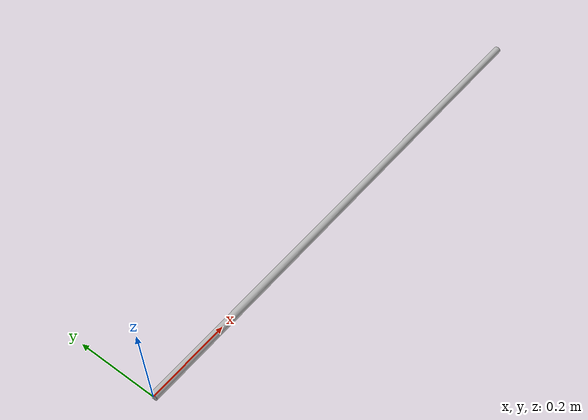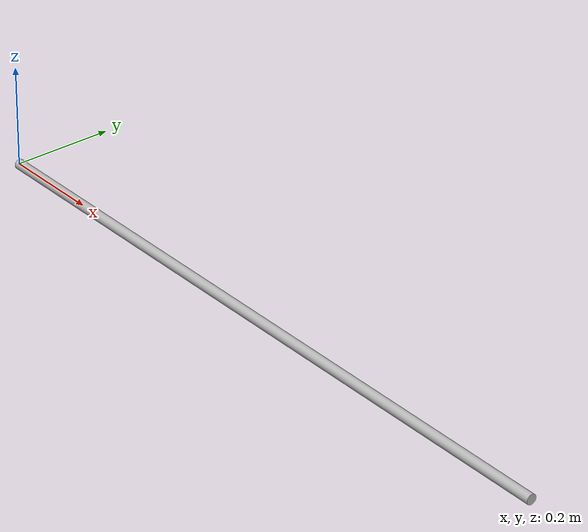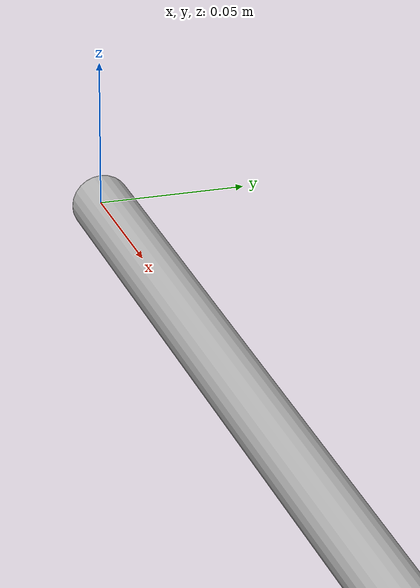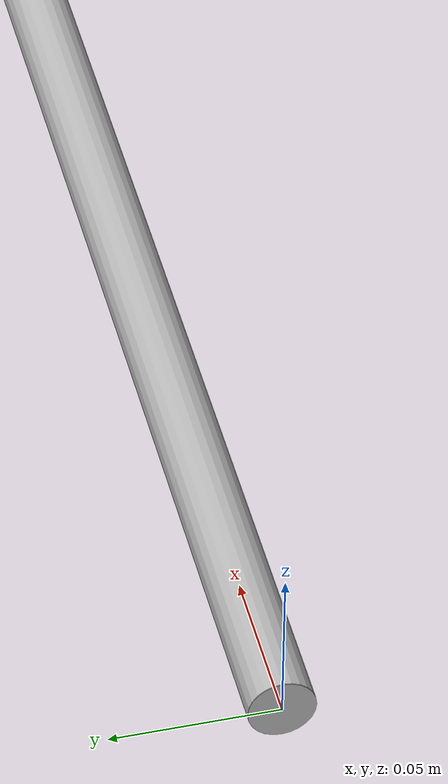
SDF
<sdf version='1.10'>
  <model name='tether'>
    <link name='element_first'>
      <inertial>
        <pose>5.0000000000000002e-05 0 0 0 1.5707963267948966 0</pose>
        <mass>0.0001</mass>
        <inertia>
          <ixx>2.500083333333334e-09</ixx>
          <ixy>0</ixy>
          <ixz>0</ixz>
          <iyy>2.500083333333334e-09</iyy>
          <iyz>0</iyz>
          <izz>5.0000000000000001e-09</izz>
        </inertia>
      </inertial>
      <visual name='element_first_visual'>
        <pose>5.0000000000000002e-05 0 0 0 1.5707963267948966 0</pose>
        <geometry>
          <cylinder>
            <length>0.0001</length>
            <radius>0.01</radius>
          </cylinder>
        </geometry>
      </visual>
    </link>
    <joint name='joint_0_to_p1' type='universal'>
      <pose relative_to='element_first'>0.0001 0 0 0 0 0</pose>
      <parent>element_first</parent>
      <child>element_p1</child>
      <axis>
        <xyz>0 1 0</xyz>
        <limit>
          <lower>-inf</lower>
          <upper>inf</upper>
        </limit>
        <dynamics>
          <damping>0.01</damping>
          <friction>0</friction>
          <spring_reference>0</spring_reference>
          <spring_stiffness>0</spring_stiffness>
        </dynamics>
      </axis>
      <axis2>
        <xyz>0 0 1</xyz>
        <limit>
          <lower>-inf</lower>
          <upper>inf</upper>
        </limit>
        <dynamics>
          <damping>0.01</damping>
          <friction>0</friction>
          <spring_reference>0</spring_reference>
          <spring_stiffness>0</spring_stiffness>
        </dynamics>
      </axis2>
    </joint>
    <link name='element_p1'>
      <pose relative_to='joint_0_to_p1'>0 0 0 0 0 0</pose>
      <inertial>
        <pose>5.0000000000000002e-05 0 0 0 1.5707963267948966 0</pose>
        <mass>0.0001</mass>
        <inertia>
          <ixx>2.500083333333334e-09</ixx>
          <ixy>0</ixy>
          <ixz>0</ixz>
          <iyy>2.500083333333334e-09</iyy>
          <iyz>0</iyz>
          <izz>5.0000000000000001e-09</izz>
        </inertia>
      </inertial>
      <visual name='element_p1_visual'>
        <pose>5.0000000000000002e-05 0 0 0 1.5707963267948966 0</pose>
        <geometry>
          <cylinder>
            <length>0.0001</length>
            <radius>0.01</radius>
          </cylinder>
        </geometry>
      </visual>
    </link>
    <joint name='joint_p1_to_p2' type='prismatic'>
      <pose relative_to='element_p1'>0.0001 0 0 0 0 0</pose>
      <parent>element_p1</parent>
      <child>element_p2</child>
      <axis>
        <xyz>1 0 0</xyz>
        <limit>
          <lower>-1</lower>
          <upper>0</upper>
          <effort>10000</effort>
          <velocity>10000</velocity>
        </limit>
        <dynamics>
        <damping>0.0</damping>
        <friction>0.0</friction>
        <spring_reference>0.0</spring_reference>
        <spring_stiffness>0.0</spring_stiffness>
      </dynamics>
      </axis>
    </joint>
    <link name='element_p2'>
      <pose relative_to='joint_p1_to_p2'>0 0 0 0 0 0</pose>
      <inertial>
        <pose>5.0000000000000002e-05 0 0 0 1.5707963267948966 0</pose>
        <mass>0.0001</mass>
        <inertia>
          <ixx>2.500083333333334e-09</ixx>
          <ixy>0</ixy>
          <ixz>0</ixz>
          <iyy>2.500083333333334e-09</iyy>
          <iyz>0</iyz>
          <izz>5.0000000000000001e-09</izz>
        </inertia>
      </inertial>
      <visual name='element_p2_visual'>
        <pose>5.0000000000000002e-05 0 0 0 1.5707963267948966 0</pose>
        <geometry>
          <cylinder>
            <length>0.0001</length>
            <radius>0.01</radius>
          </cylinder>
        </geometry>
      </visual>
    </link>
    <joint name='joint_p2_to_p3' type='prismatic'>
      <pose relative_to='element_p2'>0.0001 0 0 0 0 0</pose>
      <parent>element_p2</parent>
      <child>element_p3</child>
      <axis>
        <xyz>0 1 0</xyz>
        <limit>
          <lower>-0.10000000000000001</lower>
          <upper>0.10000000000000001</upper>
          <effort>10000</effort>
          <velocity>10000</velocity>
        </limit>
        <dynamics>
        <damping>0.1</damping>
        <friction>0.0</friction>
        <spring_reference>0.0</spring_reference>
        <spring_stiffness>25.0</spring_stiffness>
      </dynamics>
      </axis>
    </joint>
    <link name='element_p3'>
      <pose relative_to='joint_p2_to_p3'>0 0 0 0 0 0</pose>
      <inertial>
        <pose>5.0000000000000002e-05 0 0 0 1.5707963267948966 0</pose>
        <mass>0.0001</mass>
        <inertia>
          <ixx>2.500083333333334e-09</ixx>
          <ixy>0</ixy>
          <ixz>0</ixz>
          <iyy>2.500083333333334e-09</iyy>
          <iyz>0</iyz>
          <izz>5.0000000000000001e-09</izz>
        </inertia>
      </inertial>
      <visual name='element_p3_visual'>
        <pose>5.0000000000000002e-05 0 0 0 1.5707963267948966 0</pose>
        <geometry>
          <cylinder>
            <length>0.0001</length>
            <radius>0.01</radius>
          </cylinder>
        </geometry>
      </visual>
    </link>
    <joint name='joint_p3_to_1' type='prismatic'>
      <pose relative_to='element_p3'>0.0001 0 0 0 0 0</pose>
      <parent>element_p3</parent>
      <child>element_1</child>
      <axis>
        <xyz>0 0 1</xyz>
        <limit>
          <lower>-0.10000000000000001</lower>
          <upper>0.10000000000000001</upper>
          <effort>10000</effort>
          <velocity>10000</velocity>
        </limit>
        <dynamics>
        <damping>0.1</damping>
        <friction>0.0</friction>
        <spring_reference>0.0</spring_reference>
        <spring_stiffness>25.0</spring_stiffness>
      </dynamics>
      </axis>
    </joint>
    <link name='element_1'>
      <pose relative_to='joint_p3_to_1'>0 0 0 0 0 0</pose>
      <inertial>
        <pose>0.69999999999999996 0 0 0 1.5707963267948966 0</pose>
        <mass>0.02</mass>
        <inertia>
          <ixx>0.003267166666666666</ixx>
          <ixy>0</ixy>
          <ixz>0</ixz>
          <iyy>0.003267166666666666</iyy>
          <iyz>0</iyz>
          <izz>9.9999999999999995e-07</izz>
        </inertia>
      </inertial>
      <visual name='element_1_visual'>
        <pose>0.69999999999999996 0 0 0 1.5707963267948966 0</pose>
        <geometry>
          <cylinder>
            <length>1.3999999999999999</length>
            <radius>0.01</radius>
          </cylinder>
        </geometry>
      </visual>
    </link>
    <joint name='joint_1_to_2' type='universal'>
      <pose relative_to='element_1'>1.3999999999999999 0 0 0 0 0</pose>
      <parent>element_1</parent>
      <child>element_last</child>
      <axis>
        <xyz>0 1 0</xyz>
        <limit>
          <lower>-inf</lower>
          <upper>inf</upper>
        </limit>
        <dynamics>
          <damping>0.01</damping>
          <friction>0</friction>
          <spring_reference>0</spring_reference>
          <spring_stiffness>0</spring_stiffness>
        </dynamics>
      </axis>
      <axis2>
        <xyz>0 0 1</xyz>
        <limit>
          <lower>-inf</lower>
          <upper>inf</upper>
        </limit>
        <dynamics>
          <damping>0.01</damping>
          <friction>0</friction>
          <spring_reference>0</spring_reference>
          <spring_stiffness>0</spring_stiffness>
        </dynamics>
      </axis2>
    </joint>
    <link name='element_last'>
      <pose relative_to='joint_1_to_2'>0 0 0 0 0 0</pose>
      <inertial>
        <pose>5.0000000000000002e-05 0 0 0 1.5707963267948966 0</pose>
        <mass>0.0001</mass>
        <inertia>
          <ixx>2.500083333333334e-09</ixx>
          <ixy>0</ixy>
          <ixz>0</ixz>
          <iyy>2.500083333333334e-09</iyy>
          <iyz>0</iyz>
          <izz>5.0000000000000001e-09</izz>
        </inertia>
      </inertial>
      <visual name='element_last_visual'>
        <pose>5.0000000000000002e-05 0 0 0 1.5707963267948966 0</pose>
        <geometry>
          <cylinder>
            <length>0.0001</length>
            <radius>0.01</radius>
          </cylinder>
        </geometry>
      </visual>
    </link>
  </model>
</sdf>
